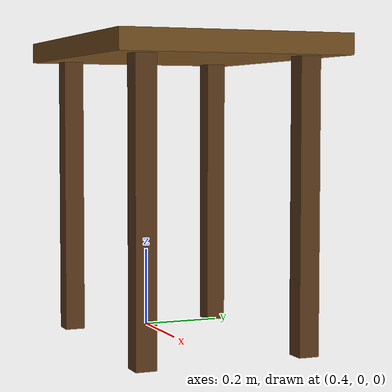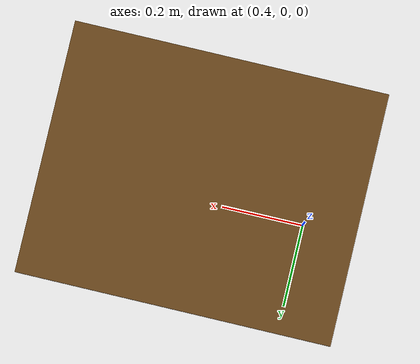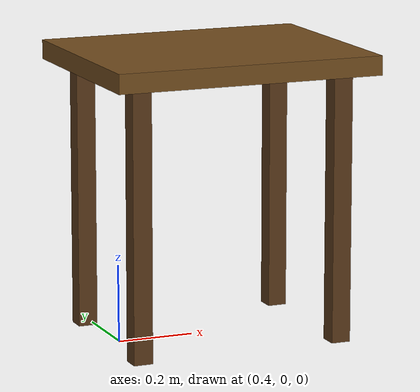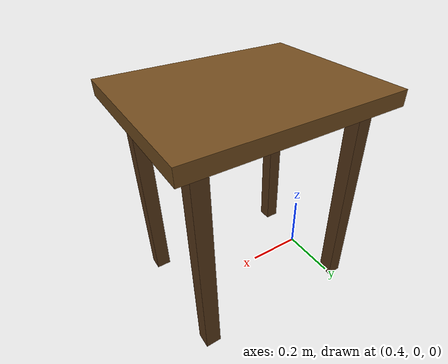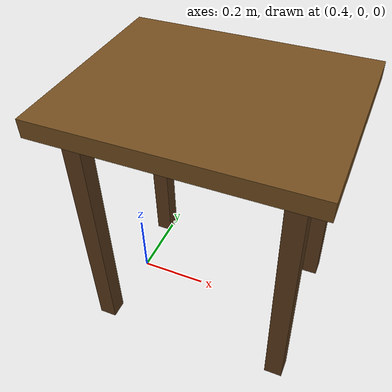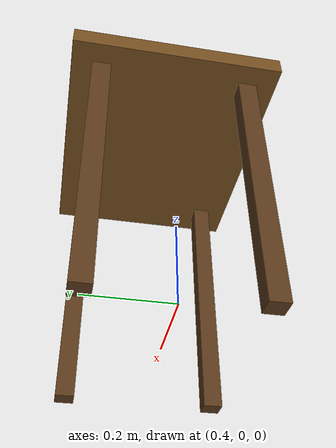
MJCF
<mujoco model="transport_table">
  <worldbody>
    <body name="transport_table" pos="0.65 0 0">
      <geom name="table_top" type="box" size="0.35 0.28 0.025" pos="0 0 0.72" rgba="0.45 0.30 0.12 1"
            friction="1.05 0.025 0.002"/>
      <geom name="table_leg_fl" type="box" size="0.025 0.025 0.35" pos="0.27 0.20 0.35" rgba="0.35 0.22 0.10 1"/>
      <geom name="table_leg_fr" type="box" size="0.025 0.025 0.35" pos="0.27 -0.20 0.35" rgba="0.35 0.22 0.10 1"/>
      <geom name="table_leg_bl" type="box" size="0.025 0.025 0.35" pos="-0.27 0.20 0.35" rgba="0.35 0.22 0.10 1"/>
      <geom name="table_leg_br" type="box" size="0.025 0.025 0.35" pos="-0.27 -0.20 0.35" rgba="0.35 0.22 0.10 1"/>
    </body>
  </worldbody>
</mujoco>
